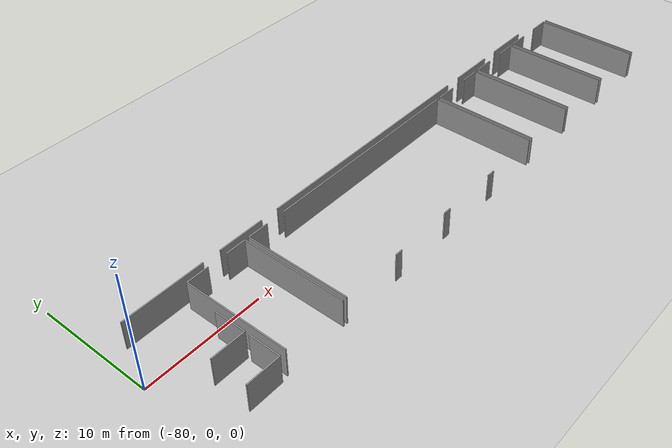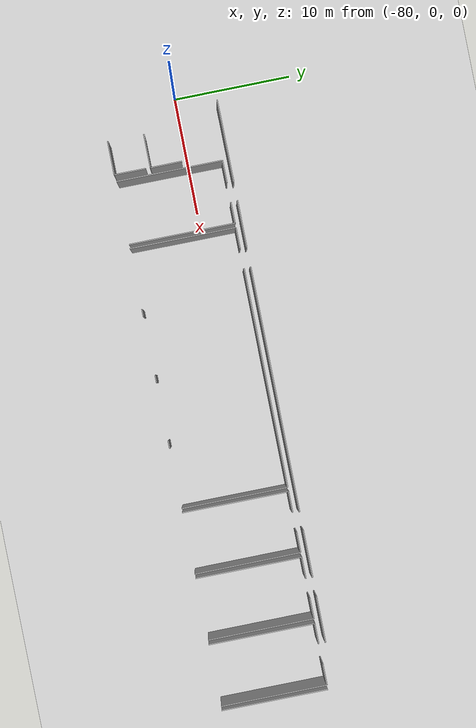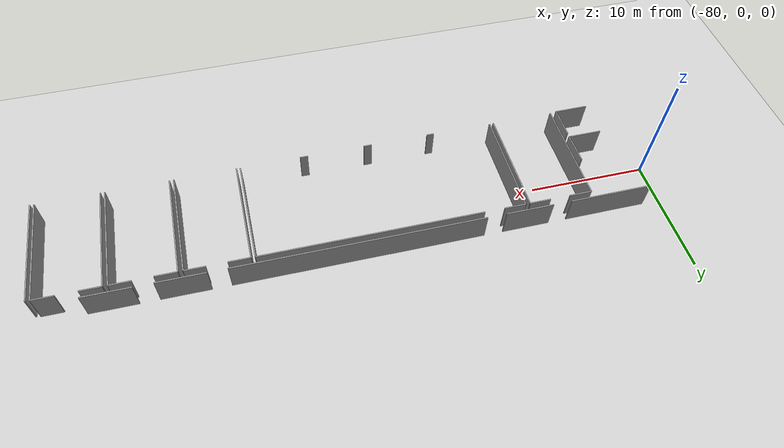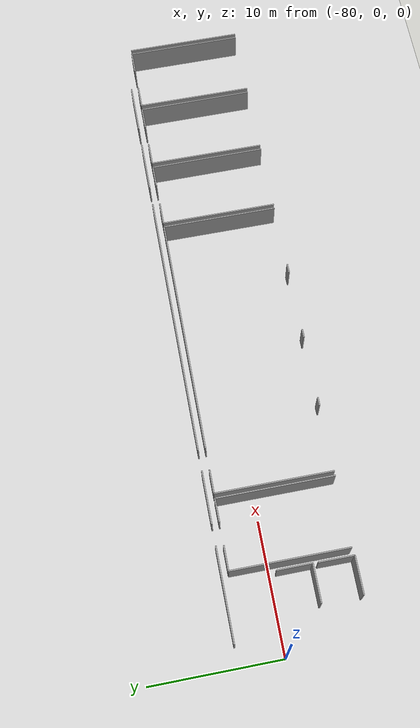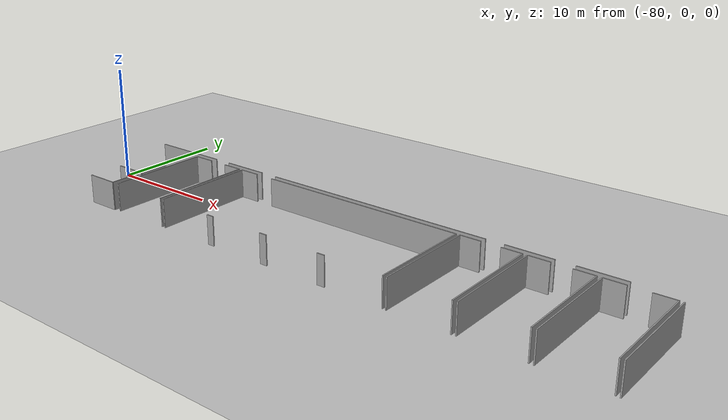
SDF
<sdf version="1.6">
 <world name="default">
  <model name="ground_plane">
   <static>1</static>
   <link name="link">
    <collision name="collision">
     <geometry><plane><normal>0 0 1</normal><size>100 100</size></plane></geometry>
     <surface><friction><ode><mu>100</mu><mu2>50</mu2></ode></friction></surface>
    </collision>
    <visual name="visual">
     <cast_shadows>0</cast_shadows>
     <geometry><plane><normal>0 0 1</normal><size>100 100</size></plane></geometry>
     <material>
      <script><uri>file://media/materials/scripts/gazebo.material</uri><name>Gazebo/Grey</name></script>
     </material>
    </visual>
   </link>
  </model>
  <model name="50015850_PLAN5">
   <static>1</static>
   <link name="Wall_20">
    <collision name="Wall_20_Collision">
     <geometry><box><size>3.92157858004 0.1 2.5</size></box></geometry>
     <pose>1.96078929002 0 1.25 0 0 0</pose>
    </collision>
    <visual name="Wall_20_Visual">
     <pose>1.96078929002 0 1.25 0 0 0</pose>
     <geometry><box><size>3.92157858004 0.1 2.5</size></box></geometry>
     <material>
      <script><uri>file://media/materials/scripts/gazebo.material</uri><name>Gazebo/Grey</name></script>
      <ambient>1 1 1 1</ambient>
     </material>
    </visual>
    <pose>54.2105196371 -2.89976524332 0 0 0 3.14159265359</pose>
   </link>
   <link name="Wall_21">
    <collision name="Wall_21_Collision">
     <geometry><box><size>4.02157223526 0.1 2.5</size></box></geometry>
     <pose>2.01078611763 0 1.25 0 0 0</pose>
    </collision>
    <visual name="Wall_21_Visual">
     <pose>2.01078611763 0 1.25 0 0 0</pose>
     <geometry><box><size>4.02157223526 0.1 2.5</size></box></geometry>
     <material>
      <script><uri>file://media/materials/scripts/gazebo.material</uri><name>Gazebo/Grey</name></script>
      <ambient>1 1 1 1</ambient>
     </material>
    </visual>
    <pose>48.7070617347 -2.89976524332 0 0 0 3.14159265359</pose>
   </link>
   <link name="Wall_22">
    <collision name="Wall_22_Collision">
     <geometry><box><size>20.818729776 0.1 2.5</size></box></geometry>
     <pose>10.409364888 0 1.25 0 0 0</pose>
    </collision>
    <visual name="Wall_22_Visual">
     <pose>10.409364888 0 1.25 0 0 0</pose>
     <geometry><box><size>20.818729776 0.1 2.5</size></box></geometry>
     <material>
      <script><uri>file://media/materials/scripts/gazebo.material</uri><name>Gazebo/Grey</name></script>
      <ambient>1 1 1 1</ambient>
     </material>
    </visual>
    <pose>43.1350802614 -2.89976524332 0 0 0 3.14159265359</pose>
   </link>
   <link name="Wall_23">
    <collision name="Wall_23_Collision">
     <geometry><box><size>4.01928811624 0.1 2.5</size></box></geometry>
     <pose>2.00964405812 0 1.25 0 0 0</pose>
    </collision>
    <visual name="Wall_23_Visual">
     <pose>2.00964405812 0 1.25 0 0 0</pose>
     <geometry><box><size>4.01928811624 0.1 2.5</size></box></geometry>
     <material>
      <script><uri>file://media/materials/scripts/gazebo.material</uri><name>Gazebo/Grey</name></script>
      <ambient>1 1 1 1</ambient>
     </material>
    </visual>
    <pose>20.730664298 -2.89976524332 0 0 0 3.14159265359</pose>
   </link>
   <link name="Wall_24">
    <collision name="Wall_24_Collision">
     <geometry><box><size>6.96914460468 0.1 2.5</size></box></geometry>
     <pose>3.48457230234 0 1.25 0 0 0</pose>
    </collision>
    <visual name="Wall_24_Visual">
     <pose>3.48457230234 0 1.25 0 0 0</pose>
     <geometry><box><size>6.96914460468 0.1 2.5</size></box></geometry>
     <material>
      <script><uri>file://media/materials/scripts/gazebo.material</uri><name>Gazebo/Grey</name></script>
      <ambient>1 1 1 1</ambient>
     </material>
    </visual>
    <pose>15.1492925576 -2.89976524332 0 0 0 -3.13805297427</pose>
   </link>
   <link name="Wall_49">
    <collision name="Wall_49_Collision">
     <geometry><box><size>2.86377767908 0.1 2.5</size></box></geometry>
     <pose>1.43188883954 0 1.25 0 0 0</pose>
    </collision>
    <visual name="Wall_49_Visual">
     <pose>1.43188883954 0 1.25 0 0 0</pose>
     <geometry><box><size>2.86377767908 0.1 2.5</size></box></geometry>
     <material>
      <script><uri>file://media/materials/scripts/gazebo.material</uri><name>Gazebo/Grey</name></script>
      <ambient>1 1 1 1</ambient>
     </material>
    </visual>
    <pose>12.6398071188 -9.45889220227 0 0 0 3.14159265359</pose>
   </link>
   <link name="Wall_53">
    <collision name="Wall_53_Collision">
     <geometry><box><size>2.66022726157 0.1 2.5</size></box></geometry>
     <pose>1.33011363078 0 1.25 0 0 0</pose>
    </collision>
    <visual name="Wall_53_Visual">
     <pose>1.33011363078 0 1.25 0 0 0</pose>
     <geometry><box><size>2.66022726157 0.1 2.5</size></box></geometry>
     <material>
      <script><uri>file://media/materials/scripts/gazebo.material</uri><name>Gazebo/Grey</name></script>
      <ambient>1 1 1 1</ambient>
     </material>
    </visual>
    <pose>12.6250872407 -6.79870566588 0 0 0 -1.56526298252</pose>
   </link>
   <link name="Wall_54">
    <collision name="Wall_54_Collision">
     <geometry><box><size>2.85261087494 0.1 2.5</size></box></geometry>
     <pose>1.42630543747 0 1.25 0 0 0</pose>
    </collision>
    <visual name="Wall_54_Visual">
     <pose>1.42630543747 0 1.25 0 0 0</pose>
     <geometry><box><size>2.85261087494 0.1 2.5</size></box></geometry>
     <material>
      <script><uri>file://media/materials/scripts/gazebo.material</uri><name>Gazebo/Grey</name></script>
      <ambient>1 1 1 1</ambient>
     </material>
    </visual>
    <pose>12.6187424656 -12.5215405114 0 0 0 3.14159265359</pose>
   </link>
   <link name="Wall_58">
    <collision name="Wall_58_Collision">
     <geometry><box><size>2.67149764352 0.1 2.5</size></box></geometry>
     <pose>1.33574882176 0 1.25 0 0 0</pose>
    </collision>
    <visual name="Wall_58_Visual">
     <pose>1.33574882176 0 1.25 0 0 0</pose>
     <geometry><box><size>2.67149764352 0.1 2.5</size></box></geometry>
     <material>
      <script><uri>file://media/materials/scripts/gazebo.material</uri><name>Gazebo/Grey</name></script>
      <ambient>1 1 1 1</ambient>
     </material>
    </visual>
    <pose>12.6283865237 -9.85006027536 0 0 0 -1.57440631653</pose>
   </link>
   <link name="Wall_59">
    <collision name="Wall_59_Collision">
     <geometry><box><size>8.98336399975 0.1 2.5</size></box></geometry>
     <pose>4.49168199987 0 1.25 0 0 0</pose>
    </collision>
    <visual name="Wall_59_Visual">
     <pose>4.49168199987 0 1.25 0 0 0</pose>
     <geometry><box><size>8.98336399975 0.1 2.5</size></box></geometry>
     <material>
      <script><uri>file://media/materials/scripts/gazebo.material</uri><name>Gazebo/Grey</name></script>
      <ambient>1 1 1 1</ambient>
     </material>
    </visual>
    <pose>13.2103292938 -12.4514941945 0 0 0 1.57079632679</pose>
   </link>
   <link name="Wall_60">
    <collision name="Wall_60_Collision">
     <geometry><box><size>1.86536387285 0.1 2.5</size></box></geometry>
     <pose>0.932681936425 0 1.25 0 0 0</pose>
    </collision>
    <visual name="Wall_60_Visual">
     <pose>0.932681936425 0 1.25 0 0 0</pose>
     <geometry><box><size>1.86536387285 0.1 2.5</size></box></geometry>
     <material>
      <script><uri>file://media/materials/scripts/gazebo.material</uri><name>Gazebo/Grey</name></script>
      <ambient>1 1 1 1</ambient>
     </material>
    </visual>
    <pose>13.2103292938 -3.46813019478 0 0 0 0.0</pose>
   </link>
   <link name="Wall_61">
    <collision name="Wall_61_Collision">
     <geometry><box><size>1.77552185775 0.1 2.5</size></box></geometry>
     <pose>0.887760928875 0 1.25 0 0 0</pose>
    </collision>
    <visual name="Wall_61_Visual">
     <pose>0.887760928875 0 1.25 0 0 0</pose>
     <geometry><box><size>1.77552185775 0.1 2.5</size></box></geometry>
     <material>
      <script><uri>file://media/materials/scripts/gazebo.material</uri><name>Gazebo/Grey</name></script>
      <ambient>1 1 1 1</ambient>
     </material>
    </visual>
    <pose>16.7590888903 -3.46813019478 0 0 0 0.0</pose>
   </link>
   <link name="Wall_62">
    <collision name="Wall_62_Collision">
     <geometry><box><size>8.98338810494 0.1 2.5</size></box></geometry>
     <pose>4.49169405247 0 1.25 0 0 0</pose>
    </collision>
    <visual name="Wall_62_Visual">
     <pose>4.49169405247 0 1.25 0 0 0</pose>
     <geometry><box><size>8.98338810494 0.1 2.5</size></box></geometry>
     <material>
      <script><uri>file://media/materials/scripts/gazebo.material</uri><name>Gazebo/Grey</name></script>
      <ambient>1 1 1 1</ambient>
     </material>
    </visual>
    <pose>18.534610748 -3.46813019478 0 0 0 -1.5684797308</pose>
   </link>
   <link name="Wall_63">
    <collision name="Wall_63_Collision">
     <geometry><box><size>0.678129560307 0.1 2.5</size></box></geometry>
     <pose>0.339064780154 0 1.25 0 0 0</pose>
    </collision>
    <visual name="Wall_63_Visual">
     <pose>0.339064780154 0 1.25 0 0 0</pose>
     <geometry><box><size>0.678129560307 0.1 2.5</size></box></geometry>
     <material>
      <script><uri>file://media/materials/scripts/gazebo.material</uri><name>Gazebo/Grey</name></script>
      <ambient>1 1 1 1</ambient>
     </material>
    </visual>
    <pose>35.8616839033 -12.4542858956 0 0 0 3.14159265359</pose>
   </link>
   <link name="Wall_64">
    <collision name="Wall_64_Collision">
     <geometry><box><size>0.67102341222 0.1 2.5</size></box></geometry>
     <pose>0.33551170611 0 1.25 0 0 0</pose>
    </collision>
    <visual name="Wall_64_Visual">
     <pose>0.33551170611 0 1.25 0 0 0</pose>
     <geometry><box><size>0.67102341222 0.1 2.5</size></box></geometry>
     <material>
      <script><uri>file://media/materials/scripts/gazebo.material</uri><name>Gazebo/Grey</name></script>
      <ambient>1 1 1 1</ambient>
     </material>
    </visual>
    <pose>30.2706681048 -12.4542858956 0 0 0 3.14159265359</pose>
   </link>
   <link name="Wall_65">
    <collision name="Wall_65_Collision">
     <geometry><box><size>0.631432015735 0.1 2.5</size></box></geometry>
     <pose>0.315716007868 0 1.25 0 0 0</pose>
    </collision>
    <visual name="Wall_65_Visual">
     <pose>0.315716007868 0 1.25 0 0 0</pose>
     <geometry><box><size>0.631432015735 0.1 2.5</size></box></geometry>
     <material>
      <script><uri>file://media/materials/scripts/gazebo.material</uri><name>Gazebo/Grey</name></script>
      <ambient>1 1 1 1</ambient>
     </material>
    </visual>
    <pose>24.654273206 -12.4542858956 0 0 0 3.14159265359</pose>
   </link>
   <link name="Wall_66">
    <collision name="Wall_66_Collision">
     <geometry><box><size>8.98876974811 0.1 2.5</size></box></geometry>
     <pose>4.49438487406 0 1.25 0 0 0</pose>
    </collision>
    <visual name="Wall_66_Visual">
     <pose>4.49438487406 0 1.25 0 0 0</pose>
     <geometry><box><size>8.98876974811 0.1 2.5</size></box></geometry>
     <material>
      <script><uri>file://media/materials/scripts/gazebo.material</uri><name>Gazebo/Grey</name></script>
      <ambient>1 1 1 1</ambient>
     </material>
    </visual>
    <pose>18.9008311655 -12.4542858956 0 0 0 1.57079632679</pose>
   </link>
   <link name="Wall_67">
    <collision name="Wall_67_Collision">
     <geometry><box><size>1.79912442104 0.1 2.5</size></box></geometry>
     <pose>0.89956221052 0 1.25 0 0 0</pose>
    </collision>
    <visual name="Wall_67_Visual">
     <pose>0.89956221052 0 1.25 0 0 0</pose>
     <geometry><box><size>1.79912442104 0.1 2.5</size></box></geometry>
     <material>
      <script><uri>file://media/materials/scripts/gazebo.material</uri><name>Gazebo/Grey</name></script>
      <ambient>1 1 1 1</ambient>
     </material>
    </visual>
    <pose>18.9008311655 -3.46551614745 0 0 0 0.0</pose>
   </link>
   <link name="Wall_68">
    <collision name="Wall_68_Collision">
     <geometry><box><size>18.5719180255 0.1 2.5</size></box></geometry>
     <pose>9.28595901275 0 1.25 0 0 0</pose>
    </collision>
    <visual name="Wall_68_Visual">
     <pose>9.28595901275 0 1.25 0 0 0</pose>
     <geometry><box><size>18.5719180255 0.1 2.5</size></box></geometry>
     <material>
      <script><uri>file://media/materials/scripts/gazebo.material</uri><name>Gazebo/Grey</name></script>
      <ambient>1 1 1 1</ambient>
     </material>
    </visual>
    <pose>22.367616268 -3.46551614745 0 0 0 0.0</pose>
   </link>
   <link name="Wall_69">
    <collision name="Wall_69_Collision">
     <geometry><box><size>8.98877364978 0.1 2.5</size></box></geometry>
     <pose>4.49438682489 0 1.25 0 0 0</pose>
    </collision>
    <visual name="Wall_69_Visual">
     <pose>4.49438682489 0 1.25 0 0 0</pose>
     <geometry><box><size>8.98877364978 0.1 2.5</size></box></geometry>
     <material>
      <script><uri>file://media/materials/scripts/gazebo.material</uri><name>Gazebo/Grey</name></script>
      <ambient>1 1 1 1</ambient>
     </material>
    </visual>
    <pose>40.9395342935 -3.46551614745 0 0 0 -1.56986459744</pose>
   </link>
   <link name="Wall_70">
    <collision name="Wall_70_Collision">
     <geometry><box><size>9.00930144026 0.1 2.5</size></box></geometry>
     <pose>4.50465072013 0 1.25 0 0 0</pose>
    </collision>
    <visual name="Wall_70_Visual">
     <pose>4.50465072013 0 1.25 0 0 0</pose>
     <geometry><box><size>9.00930144026 0.1 2.5</size></box></geometry>
     <material>
      <script><uri>file://media/materials/scripts/gazebo.material</uri><name>Gazebo/Grey</name></script>
      <ambient>1 1 1 1</ambient>
     </material>
    </visual>
    <pose>41.2803756107 -12.4768732948 0 0 0 1.57079632679</pose>
   </link>
   <link name="Wall_71">
    <collision name="Wall_71_Collision">
     <geometry><box><size>1.79151069095 0.1 2.5</size></box></geometry>
     <pose>0.895755345473 0 1.25 0 0 0</pose>
    </collision>
    <visual name="Wall_71_Visual">
     <pose>0.895755345473 0 1.25 0 0 0</pose>
     <geometry><box><size>1.79151069095 0.1 2.5</size></box></geometry>
     <material>
      <script><uri>file://media/materials/scripts/gazebo.material</uri><name>Gazebo/Grey</name></script>
      <ambient>1 1 1 1</ambient>
     </material>
    </visual>
    <pose>41.2803756107 -3.46757185458 0 0 0 0.0</pose>
   </link>
   <link name="Wall_72">
    <collision name="Wall_72_Collision">
     <geometry><box><size>1.73364634224 0.1 2.5</size></box></geometry>
     <pose>0.866823171119 0 1.25 0 0 0</pose>
    </collision>
    <visual name="Wall_72_Visual">
     <pose>0.866823171119 0 1.25 0 0 0</pose>
     <geometry><box><size>1.73364634224 0.1 2.5</size></box></geometry>
     <material>
      <script><uri>file://media/materials/scripts/gazebo.material</uri><name>Gazebo/Grey</name></script>
      <ambient>1 1 1 1</ambient>
     </material>
    </visual>
    <pose>44.733202208 -3.46757185458 0 0 0 0.0</pose>
   </link>
   <link name="Wall_73">
    <collision name="Wall_73_Collision">
     <geometry><box><size>9.00937868415 0.1 2.5</size></box></geometry>
     <pose>4.50468934208 0 1.25 0 0 0</pose>
    </collision>
    <visual name="Wall_73_Visual">
     <pose>4.50468934208 0 1.25 0 0 0</pose>
     <geometry><box><size>9.00937868415 0.1 2.5</size></box></geometry>
     <material>
      <script><uri>file://media/materials/scripts/gazebo.material</uri><name>Gazebo/Grey</name></script>
      <ambient>1 1 1 1</ambient>
     </material>
    </visual>
    <pose>46.4668485502 -3.46757185458 0 0 0 -1.56665537708</pose>
   </link>
   <link name="Wall_74">
    <collision name="Wall_74_Collision">
     <geometry><box><size>8.98392233995 0.1 2.5</size></box></geometry>
     <pose>4.49196116998 0 1.25 0 0 0</pose>
    </collision>
    <visual name="Wall_74_Visual">
     <pose>4.49196116998 0 1.25 0 0 0</pose>
     <geometry><box><size>8.98392233995 0.1 2.5</size></box></geometry>
     <material>
      <script><uri>file://media/materials/scripts/gazebo.material</uri><name>Gazebo/Grey</name></script>
      <ambient>1 1 1 1</ambient>
     </material>
    </visual>
    <pose>46.857432904 -12.4514941945 0 0 0 1.57079632679</pose>
   </link>
   <link name="Wall_75">
    <collision name="Wall_75_Collision">
     <geometry><box><size>1.81688979126 0.1 2.5</size></box></geometry>
     <pose>0.908444895628 0 1.25 0 0 0</pose>
    </collision>
    <visual name="Wall_75_Visual">
     <pose>0.908444895628 0 1.25 0 0 0</pose>
     <geometry><box><size>1.81688979126 0.1 2.5</size></box></geometry>
     <material>
      <script><uri>file://media/materials/scripts/gazebo.material</uri><name>Gazebo/Grey</name></script>
      <ambient>1 1 1 1</ambient>
     </material>
    </visual>
    <pose>46.857432904 -3.46757185458 0 0 0 0.0</pose>
   </link>
   <link name="Wall_76">
    <collision name="Wall_76_Collision">
     <geometry><box><size>1.75065033945 0.1 2.5</size></box></geometry>
     <pose>0.875325169723 0 1.25 0 0 0</pose>
    </collision>
    <visual name="Wall_76_Visual">
     <pose>0.875325169723 0 1.25 0 0 0</pose>
     <geometry><box><size>1.75065033945 0.1 2.5</size></box></geometry>
     <material>
      <script><uri>file://media/materials/scripts/gazebo.material</uri><name>Gazebo/Grey</name></script>
      <ambient>1 1 1 1</ambient>
     </material>
    </visual>
    <pose>50.3267559165 -3.46757185458 0 0 0 0.0</pose>
   </link>
   <link name="Wall_77">
    <collision name="Wall_77_Collision">
     <geometry><box><size>8.98396892698 0.1 2.5</size></box></geometry>
     <pose>4.49198446349 0 1.25 0 0 0</pose>
    </collision>
    <visual name="Wall_77_Visual">
     <pose>4.49198446349 0 1.25 0 0 0</pose>
     <geometry><box><size>8.98396892698 0.1 2.5</size></box></geometry>
     <material>
      <script><uri>file://media/materials/scripts/gazebo.material</uri><name>Gazebo/Grey</name></script>
      <ambient>1 1 1 1</ambient>
     </material>
    </visual>
    <pose>52.0774062559 -3.46757185458 0 0 0 -1.56757589887</pose>
   </link>
   <link name="Wall_78">
    <collision name="Wall_78_Collision">
     <geometry><box><size>8.98508977857 0.1 2.5</size></box></geometry>
     <pose>4.49254488928 0 1.25 0 0 0</pose>
    </collision>
    <visual name="Wall_78_Visual">
     <pose>4.49254488928 0 1.25 0 0 0</pose>
     <geometry><box><size>8.98508977857 0.1 2.5</size></box></geometry>
     <material>
      <script><uri>file://media/materials/scripts/gazebo.material</uri><name>Gazebo/Grey</name></script>
      <ambient>1 1 1 1</ambient>
     </material>
    </visual>
    <pose>52.4723050568 -12.4641837447 0 0 0 1.57079632679</pose>
   </link>
   <link name="Wall_79">
    <collision name="Wall_79_Collision">
     <geometry><box><size>1.75369583148 0.1 2.5</size></box></geometry>
     <pose>0.876847915741 0 1.25 0 0 0</pose>
    </collision>
    <visual name="Wall_79_Visual">
     <pose>0.876847915741 0 1.25 0 0 0</pose>
     <geometry><box><size>1.75369583148 0.1 2.5</size></box></geometry>
     <material>
      <script><uri>file://media/materials/scripts/gazebo.material</uri><name>Gazebo/Grey</name></script>
      <ambient>1 1 1 1</ambient>
     </material>
    </visual>
    <pose>52.4723050568 -3.47909396612 0 0 0 0.0</pose>
   </link>
   <link name="Wall_80">
    <collision name="Wall_80_Collision">
     <geometry><box><size>1.76638538164 0.1 2.5</size></box></geometry>
     <pose>0.883192690819 0 1.25 0 0 0</pose>
    </collision>
    <visual name="Wall_80_Visual">
     <pose>0.883192690819 0 1.25 0 0 0</pose>
     <geometry><box><size>1.76638538164 0.1 2.5</size></box></geometry>
     <material>
      <script><uri>file://media/materials/scripts/gazebo.material</uri><name>Gazebo/Grey</name></script>
      <ambient>1 1 1 1</ambient>
     </material>
    </visual>
    <pose>55.9357908762 -3.47909396612 0 0 0 0.0</pose>
   </link>
   <link name="Wall_81">
    <collision name="Wall_81_Collision">
     <geometry><box><size>8.98511048125 0.1 2.5</size></box></geometry>
     <pose>4.49255524063 0 1.25 0 0 0</pose>
    </collision>
    <visual name="Wall_81_Visual">
     <pose>4.49255524063 0 1.25 0 0 0</pose>
     <geometry><box><size>8.98511048125 0.1 2.5</size></box></geometry>
     <material>
      <script><uri>file://media/materials/scripts/gazebo.material</uri><name>Gazebo/Grey</name></script>
      <ambient>1 1 1 1</ambient>
     </material>
    </visual>
    <pose>57.7021762579 -3.47909396612 0 0 0 -1.56864964968</pose>
   </link>
   <link name="Wall_82">
    <collision name="Wall_82_Collision">
     <geometry><box><size>9.00285514878 0.1 2.5</size></box></geometry>
     <pose>4.50142757439 0 1.25 0 0 0</pose>
    </collision>
    <visual name="Wall_82_Visual">
     <pose>4.50142757439 0 1.25 0 0 0</pose>
     <geometry><box><size>9.00285514878 0.1 2.5</size></box></geometry>
     <material>
      <script><uri>file://media/materials/scripts/gazebo.material</uri><name>Gazebo/Grey</name></script>
      <ambient>1 1 1 1</ambient>
     </material>
    </visual>
    <pose>58.0493623501 -12.4819491149 0 0 0 1.57079632679</pose>
   </link>
   <pose>-86.75 6.34082228285 0 0 0 0</pose>
  </model>
 </world>
</sdf>
